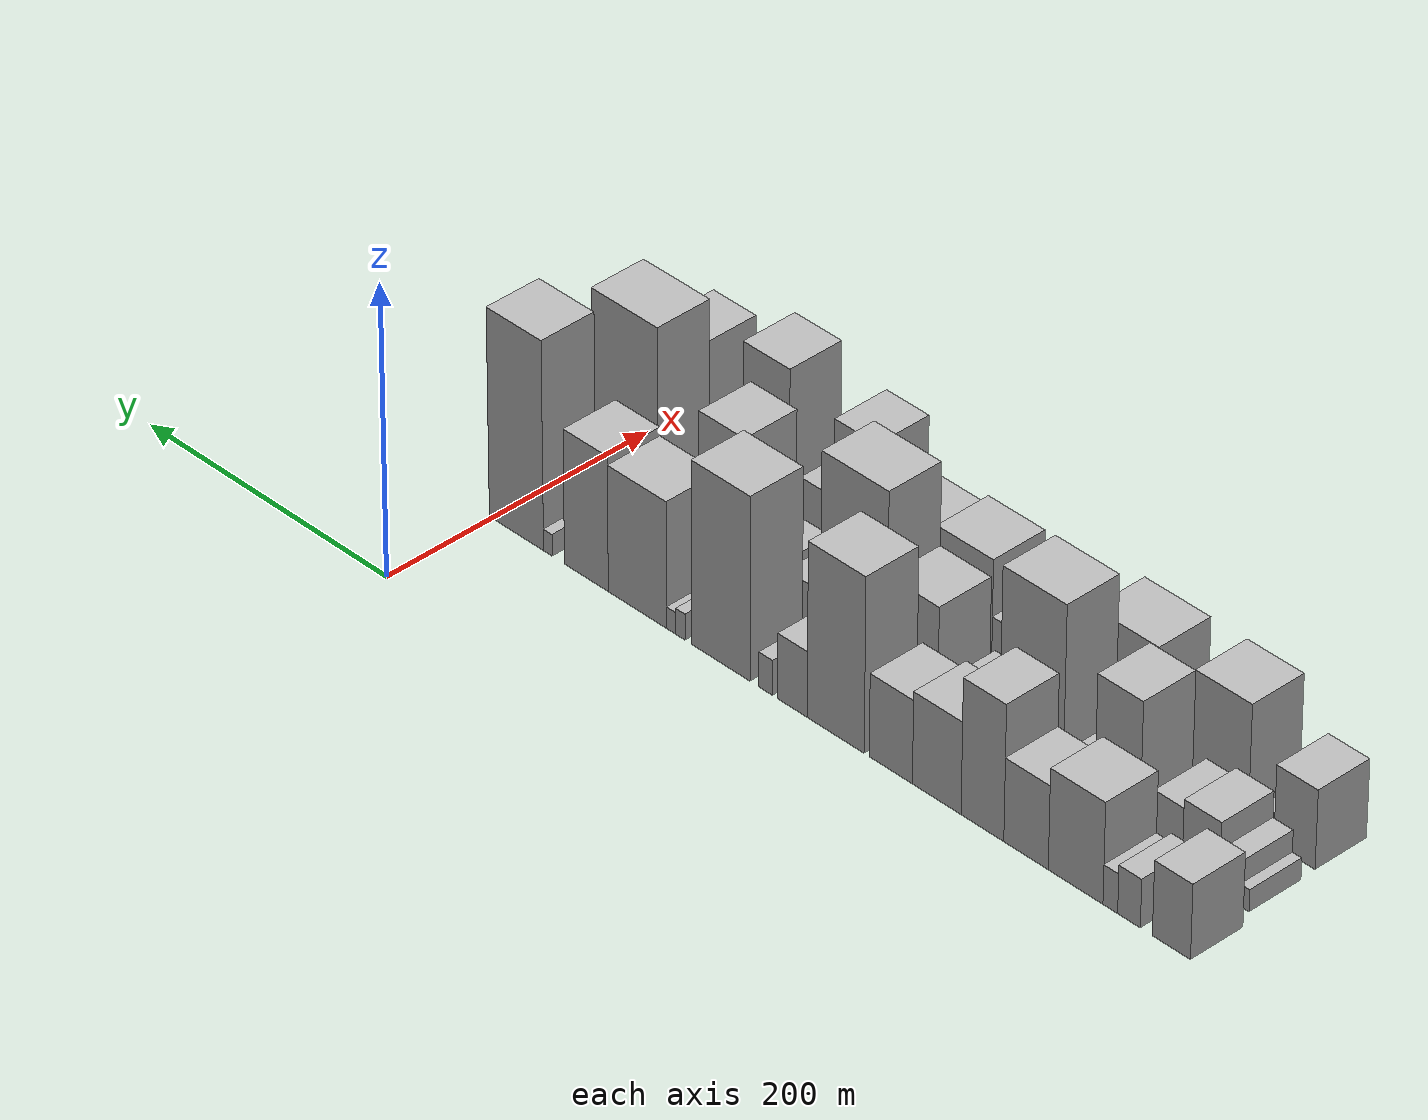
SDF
<sdf version="1.6">
 <world name="default">
  <model name="building_1">
   <static>1</static>
   <pose>100.0000 -533.7878 0 0.000000 0.000000 0.000000</pose>
   <link name="link">
    <pose>0 0 25.50 0 0 0</pose>
    <collision name="collision"><geometry><box><size>40.0000 28.4243 51.0000</size></box></geometry></collision>
    <visual name="visual">
     <cast_shadows>0</cast_shadows>
     <geometry><box><size>40.0000 28.4243 51.0000</size></box></geometry>
     <material>
      <script>
       <uri>model://HANNAS_wall/materials/scripts</uri>
       <uri>model://HANNAS_wall/materials/textures</uri>
       <name>vrc/HANNAS_wall</name>
      </script>
     </material>
    </visual>
   </link>
  </model>
  <model name="building_2">
   <static>1</static>
   <pose>100.0000 -502.0530 0 0.000000 0.000000 0.000000</pose>
   <link name="link">
    <pose>0 0 16.50 0 0 0</pose>
    <collision name="collision"><geometry><box><size>40.0000 17.0454 33.0000</size></box></geometry></collision>
    <visual name="visual">
     <cast_shadows>0</cast_shadows>
     <geometry><box><size>40.0000 17.0454 33.0000</size></box></geometry>
     <material>
      <script>
       <uri>model://HANNAS_wall/materials/scripts</uri>
       <uri>model://HANNAS_wall/materials/textures</uri>
       <name>vrc/HANNAS_wall</name>
      </script>
     </material>
    </visual>
   </link>
  </model>
  <model name="building_3">
   <static>1</static>
   <pose>100.0000 -487.9994 0 0.000000 0.000000 0.000000</pose>
   <link name="link">
    <pose>0 0 13.50 0 0 0</pose>
    <collision name="collision"><geometry><box><size>40.0000 11.0617 27.0000</size></box></geometry></collision>
    <visual name="visual">
     <cast_shadows>0</cast_shadows>
     <geometry><box><size>40.0000 11.0617 27.0000</size></box></geometry>
     <material>
      <script>
       <uri>model://HANNAS_wall/materials/scripts</uri>
       <uri>model://HANNAS_wall/materials/textures</uri>
       <name>vrc/HANNAS_wall</name>
      </script>
     </material>
    </visual>
   </link>
  </model>
  <model name="building_4">
   <static>1</static>
   <pose>100.0000 -461.7784 0 0.000000 0.000000 0.000000</pose>
   <link name="link">
    <pose>0 0 34.50 0 0 0</pose>
    <collision name="collision"><geometry><box><size>40.0000 41.3804 69.0000</size></box></geometry></collision>
    <visual name="visual">
     <cast_shadows>0</cast_shadows>
     <geometry><box><size>40.0000 41.3804 69.0000</size></box></geometry>
     <material>
      <script>
       <uri>model://HANNAS_wall/materials/scripts</uri>
       <uri>model://HANNAS_wall/materials/textures</uri>
       <name>vrc/HANNAS_wall</name>
      </script>
     </material>
    </visual>
   </link>
  </model>
  <model name="building_5">
   <static>1</static>
   <pose>100.0000 -424.1361 0 0.000000 0.000000 0.000000</pose>
   <link name="link">
    <pose>0 0 28.50 0 0 0</pose>
    <collision name="collision"><geometry><box><size>40.0000 33.9042 57.0000</size></box></geometry></collision>
    <visual name="visual">
     <cast_shadows>0</cast_shadows>
     <geometry><box><size>40.0000 33.9042 57.0000</size></box></geometry>
     <material>
      <script>
       <uri>model://HANNAS_wall/materials/scripts</uri>
       <uri>model://HANNAS_wall/materials/textures</uri>
       <name>vrc/HANNAS_wall</name>
      </script>
     </material>
    </visual>
   </link>
  </model>
  <model name="building_6">
   <static>1</static>
   <pose>100.0000 -390.7886 0 0.000000 0.000000 0.000000</pose>
   <link name="link">
    <pose>0 0 46.50 0 0 0</pose>
    <collision name="collision"><geometry><box><size>40.0000 32.7908 93.0000</size></box></geometry></collision>
    <visual name="visual">
     <cast_shadows>0</cast_shadows>
     <geometry><box><size>40.0000 32.7908 93.0000</size></box></geometry>
     <material>
      <script>
       <uri>model://HANNAS_wall/materials/scripts</uri>
       <uri>model://HANNAS_wall/materials/textures</uri>
       <name>vrc/HANNAS_wall</name>
      </script>
     </material>
    </visual>
   </link>
  </model>
  <model name="building_7">
   <static>1</static>
   <pose>100.0000 -355.5904 0 0.000000 0.000000 0.000000</pose>
   <link name="link">
    <pose>0 0 31.50 0 0 0</pose>
    <collision name="collision"><geometry><box><size>40.0000 37.6057 63.0000</size></box></geometry></collision>
    <visual name="visual">
     <cast_shadows>0</cast_shadows>
     <geometry><box><size>40.0000 37.6057 63.0000</size></box></geometry>
     <material>
      <script>
       <uri>model://HANNAS_wall/materials/scripts</uri>
       <uri>model://HANNAS_wall/materials/textures</uri>
       <name>vrc/HANNAS_wall</name>
      </script>
     </material>
    </visual>
   </link>
  </model>
  <model name="building_8">
   <static>1</static>
   <pose>100.0000 -319.9944 0 0.000000 0.000000 0.000000</pose>
   <link name="link">
    <pose>0 0 28.50 0 0 0</pose>
    <collision name="collision"><geometry><box><size>40.0000 33.5863 57.0000</size></box></geometry></collision>
    <visual name="visual">
     <cast_shadows>0</cast_shadows>
     <geometry><box><size>40.0000 33.5863 57.0000</size></box></geometry>
     <material>
      <script>
       <uri>model://HANNAS_wall/materials/scripts</uri>
       <uri>model://HANNAS_wall/materials/textures</uri>
       <name>vrc/HANNAS_wall</name>
      </script>
     </material>
    </visual>
   </link>
  </model>
  <model name="building_9">
   <static>1</static>
   <pose>100.0000 -276.8330 0 0.000000 0.000000 0.000000</pose>
   <link name="link">
    <pose>0 0 60.00 0 0 0</pose>
    <collision name="collision"><geometry><box><size>40.0000 44.7365 120.0000</size></box></geometry></collision>
    <visual name="visual">
     <cast_shadows>0</cast_shadows>
     <geometry><box><size>40.0000 44.7365 120.0000</size></box></geometry>
     <material>
      <script>
       <uri>model://HANNAS_wall/materials/scripts</uri>
       <uri>model://HANNAS_wall/materials/textures</uri>
       <name>vrc/HANNAS_wall</name>
      </script>
     </material>
    </visual>
   </link>
  </model>
  <model name="building_10">
   <static>1</static>
   <pose>100.0000 -242.7322 0 0.000000 0.000000 0.000000</pose>
   <link name="link">
    <pose>0 0 22.50 0 0 0</pose>
    <collision name="collision"><geometry><box><size>40.0000 23.4651 45.0000</size></box></geometry></collision>
    <visual name="visual">
     <cast_shadows>0</cast_shadows>
     <geometry><box><size>40.0000 23.4651 45.0000</size></box></geometry>
     <material>
      <script>
       <uri>model://HANNAS_wall/materials/scripts</uri>
       <uri>model://HANNAS_wall/materials/textures</uri>
       <name>vrc/HANNAS_wall</name>
      </script>
     </material>
    </visual>
   </link>
  </model>
  <model name="building_11">
   <static>1</static>
   <pose>100.0000 -221.5795 0 0.000000 0.000000 0.000000</pose>
   <link name="link">
    <pose>0 0 12.00 0 0 0</pose>
    <collision name="collision"><geometry><box><size>40.0000 10.8404 24.0000</size></box></geometry></collision>
    <visual name="visual">
     <cast_shadows>0</cast_shadows>
     <geometry><box><size>40.0000 10.8404 24.0000</size></box></geometry>
     <material>
      <script>
       <uri>model://HANNAS_wall/materials/scripts</uri>
       <uri>model://HANNAS_wall/materials/textures</uri>
       <name>vrc/HANNAS_wall</name>
      </script>
     </material>
    </visual>
   </link>
  </model>
  <model name="building_12">
   <static>1</static>
   <pose>100.0000 -185.7184 0 0.000000 0.000000 0.000000</pose>
   <link name="link">
    <pose>0 0 63.00 0 0 0</pose>
    <collision name="collision"><geometry><box><size>40.0000 46.8817 126.0000</size></box></geometry></collision>
    <visual name="visual">
     <cast_shadows>0</cast_shadows>
     <geometry><box><size>40.0000 46.8817 126.0000</size></box></geometry>
     <material>
      <script>
       <uri>model://HANNAS_wall/materials/scripts</uri>
       <uri>model://HANNAS_wall/materials/textures</uri>
       <name>vrc/HANNAS_wall</name>
      </script>
     </material>
    </visual>
   </link>
  </model>
  <model name="building_13">
   <static>1</static>
   <pose>100.0000 -153.5307 0 0.000000 0.000000 0.000000</pose>
   <link name="link">
    <pose>0 0 9.00 0 0 0</pose>
    <collision name="collision"><geometry><box><size>40.0000 7.4938 18.0000</size></box></geometry></collision>
    <visual name="visual">
     <cast_shadows>0</cast_shadows>
     <geometry><box><size>40.0000 7.4938 18.0000</size></box></geometry>
     <material>
      <script>
       <uri>model://HANNAS_wall/materials/scripts</uri>
       <uri>model://HANNAS_wall/materials/textures</uri>
       <name>vrc/HANNAS_wall</name>
      </script>
     </material>
    </visual>
   </link>
  </model>
  <model name="building_14">
   <static>1</static>
   <pose>100.0000 -146.0817 0 0.000000 0.000000 0.000000</pose>
   <link name="link">
    <pose>0 0 7.50 0 0 0</pose>
    <collision name="collision"><geometry><box><size>40.0000 7.4043 15.0000</size></box></geometry></collision>
    <visual name="visual">
     <cast_shadows>0</cast_shadows>
     <geometry><box><size>40.0000 7.4043 15.0000</size></box></geometry>
     <material>
      <script>
       <uri>model://HANNAS_wall/materials/scripts</uri>
       <uri>model://HANNAS_wall/materials/textures</uri>
       <name>vrc/HANNAS_wall</name>
      </script>
     </material>
    </visual>
   </link>
  </model>
  <model name="building_15">
   <static>1</static>
   <pose>100.0000 -118.7138 0 0.000000 0.000000 0.000000</pose>
   <link name="link">
    <pose>0 0 43.50 0 0 0</pose>
    <collision name="collision"><geometry><box><size>40.0000 47.3314 87.0000</size></box></geometry></collision>
    <visual name="visual">
     <cast_shadows>0</cast_shadows>
     <geometry><box><size>40.0000 47.3314 87.0000</size></box></geometry>
     <material>
      <script>
       <uri>model://HANNAS_wall/materials/scripts</uri>
       <uri>model://HANNAS_wall/materials/textures</uri>
       <name>vrc/HANNAS_wall</name>
      </script>
     </material>
    </visual>
   </link>
  </model>
  <model name="building_16">
   <static>1</static>
   <pose>100.0000 -77.1451 0 0.000000 0.000000 0.000000</pose>
   <link name="link">
    <pose>0 0 46.50 0 0 0</pose>
    <collision name="collision"><geometry><box><size>40.0000 35.8060 93.0000</size></box></geometry></collision>
    <visual name="visual">
     <cast_shadows>0</cast_shadows>
     <geometry><box><size>40.0000 35.8060 93.0000</size></box></geometry>
     <material>
      <script>
       <uri>model://HANNAS_wall/materials/scripts</uri>
       <uri>model://HANNAS_wall/materials/textures</uri>
       <name>vrc/HANNAS_wall</name>
      </script>
     </material>
    </visual>
   </link>
  </model>
  <model name="building_17">
   <static>1</static>
   <pose>100.0000 -45.6650 0 0.000000 0.000000 0.000000</pose>
   <link name="link">
    <pose>0 0 7.50 0 0 0</pose>
    <collision name="collision"><geometry><box><size>40.0000 7.1542 15.0000</size></box></geometry></collision>
    <visual name="visual">
     <cast_shadows>0</cast_shadows>
     <geometry><box><size>40.0000 7.1542 15.0000</size></box></geometry>
     <material>
      <script>
       <uri>model://HANNAS_wall/materials/scripts</uri>
       <uri>model://HANNAS_wall/materials/textures</uri>
       <name>vrc/HANNAS_wall</name>
      </script>
     </material>
    </visual>
   </link>
  </model>
  <model name="building_18">
   <static>1</static>
   <pose>100.0000 -19.7245 0 0.000000 0.000000 0.000000</pose>
   <link name="link">
    <pose>0 0 72.00 0 0 0</pose>
    <collision name="collision"><geometry><box><size>40.0000 44.7270 144.0000</size></box></geometry></collision>
    <visual name="visual">
     <cast_shadows>0</cast_shadows>
     <geometry><box><size>40.0000 44.7270 144.0000</size></box></geometry>
     <material>
      <script>
       <uri>model://HANNAS_wall/materials/scripts</uri>
       <uri>model://HANNAS_wall/materials/textures</uri>
       <name>vrc/HANNAS_wall</name>
      </script>
     </material>
    </visual>
   </link>
  </model>
  <model name="building_36">
   <static>1</static>
   <pose>152.0000 -537.5006 0 0.000000 0.000000 0.000000</pose>
   <link name="link">
    <pose>0 0 7.50 0 0 0</pose>
    <collision name="collision"><geometry><box><size>40.0000 6.9989 15.0000</size></box></geometry></collision>
    <visual name="visual">
     <cast_shadows>0</cast_shadows>
     <geometry><box><size>40.0000 6.9989 15.0000</size></box></geometry>
     <material>
      <script>
       <uri>model://HANNAS_wall/materials/scripts</uri>
       <uri>model://HANNAS_wall/materials/textures</uri>
       <name>vrc/HANNAS_wall</name>
      </script>
     </material>
    </visual>
   </link>
  </model>
  <model name="building_37">
   <static>1</static>
   <pose>152.0000 -526.4591 0 0.000000 0.000000 0.000000</pose>
   <link name="link">
    <pose>0 0 15.00 0 0 0</pose>
    <collision name="collision"><geometry><box><size>40.0000 15.0840 30.0000</size></box></geometry></collision>
    <visual name="visual">
     <cast_shadows>0</cast_shadows>
     <geometry><box><size>40.0000 15.0840 30.0000</size></box></geometry>
     <material>
      <script>
       <uri>model://HANNAS_wall/materials/scripts</uri>
       <uri>model://HANNAS_wall/materials/textures</uri>
       <name>vrc/HANNAS_wall</name>
      </script>
     </material>
    </visual>
   </link>
  </model>
  <model name="building_38">
   <static>1</static>
   <pose>152.0000 -504.8679 0 0.000000 0.000000 0.000000</pose>
   <link name="link">
    <pose>0 0 24.00 0 0 0</pose>
    <collision name="collision"><geometry><box><size>40.0000 28.0985 48.0000</size></box></geometry></collision>
    <visual name="visual">
     <cast_shadows>0</cast_shadows>
     <geometry><box><size>40.0000 28.0985 48.0000</size></box></geometry>
     <material>
      <script>
       <uri>model://HANNAS_wall/materials/scripts</uri>
       <uri>model://HANNAS_wall/materials/textures</uri>
       <name>vrc/HANNAS_wall</name>
      </script>
     </material>
    </visual>
   </link>
  </model>
  <model name="building_39">
   <static>1</static>
   <pose>152.0000 -479.7542 0 0.000000 0.000000 0.000000</pose>
   <link name="link">
    <pose>0 0 21.00 0 0 0</pose>
    <collision name="collision"><geometry><box><size>40.0000 22.1289 42.0000</size></box></geometry></collision>
    <visual name="visual">
     <cast_shadows>0</cast_shadows>
     <geometry><box><size>40.0000 22.1289 42.0000</size></box></geometry>
     <material>
      <script>
       <uri>model://HANNAS_wall/materials/scripts</uri>
       <uri>model://HANNAS_wall/materials/textures</uri>
       <name>vrc/HANNAS_wall</name>
      </script>
     </material>
    </visual>
   </link>
  </model>
  <model name="building_40">
   <static>1</static>
   <pose>152.0000 -441.5042 0 0.000000 0.000000 0.000000</pose>
   <link name="link">
    <pose>0 0 48.00 0 0 0</pose>
    <collision name="collision"><geometry><box><size>40.0000 34.3711 96.0000</size></box></geometry></collision>
    <visual name="visual">
     <cast_shadows>0</cast_shadows>
     <geometry><box><size>40.0000 34.3711 96.0000</size></box></geometry>
     <material>
      <script>
       <uri>model://HANNAS_wall/materials/scripts</uri>
       <uri>model://HANNAS_wall/materials/textures</uri>
       <name>vrc/HANNAS_wall</name>
      </script>
     </material>
    </visual>
   </link>
  </model>
  <model name="building_41">
   <static>1</static>
   <pose>152.0000 -415.2745 0 0.000000 0.000000 0.000000</pose>
   <link name="link">
    <pose>0 0 18.00 0 0 0</pose>
    <collision name="collision"><geometry><box><size>40.0000 18.0883 36.0000</size></box></geometry></collision>
    <visual name="visual">
     <cast_shadows>0</cast_shadows>
     <geometry><box><size>40.0000 18.0883 36.0000</size></box></geometry>
     <material>
      <script>
       <uri>model://HANNAS_wall/materials/scripts</uri>
       <uri>model://HANNAS_wall/materials/textures</uri>
       <name>vrc/HANNAS_wall</name>
      </script>
     </material>
    </visual>
   </link>
  </model>
  <model name="building_42">
   <static>1</static>
   <pose>152.0000 -375.8528 0 0.000000 0.000000 0.000000</pose>
   <link name="link">
    <pose>0 0 64.50 0 0 0</pose>
    <collision name="collision"><geometry><box><size>40.0000 48.7551 129.0000</size></box></geometry></collision>
    <visual name="visual">
     <cast_shadows>0</cast_shadows>
     <geometry><box><size>40.0000 48.7551 129.0000</size></box></geometry>
     <material>
      <script>
       <uri>model://HANNAS_wall/materials/scripts</uri>
       <uri>model://HANNAS_wall/materials/textures</uri>
       <name>vrc/HANNAS_wall</name>
      </script>
     </material>
    </visual>
   </link>
  </model>
  <model name="building_43">
   <static>1</static>
   <pose>152.0000 -347.8266 0 0.000000 0.000000 0.000000</pose>
   <link name="link">
    <pose>0 0 7.50 0 0 0</pose>
    <collision name="collision"><geometry><box><size>40.0000 7.2974 15.0000</size></box></geometry></collision>
    <visual name="visual">
     <cast_shadows>0</cast_shadows>
     <geometry><box><size>40.0000 7.2974 15.0000</size></box></geometry>
     <material>
      <script>
       <uri>model://HANNAS_wall/materials/scripts</uri>
       <uri>model://HANNAS_wall/materials/textures</uri>
       <name>vrc/HANNAS_wall</name>
      </script>
     </material>
    </visual>
   </link>
  </model>
  <model name="building_44">
   <static>1</static>
   <pose>152.0000 -335.9141 0 0.000000 0.000000 0.000000</pose>
   <link name="link">
    <pose>0 0 15.00 0 0 0</pose>
    <collision name="collision"><geometry><box><size>40.0000 16.5275 30.0000</size></box></geometry></collision>
    <visual name="visual">
     <cast_shadows>0</cast_shadows>
     <geometry><box><size>40.0000 16.5275 30.0000</size></box></geometry>
     <material>
      <script>
       <uri>model://HANNAS_wall/materials/scripts</uri>
       <uri>model://HANNAS_wall/materials/textures</uri>
       <name>vrc/HANNAS_wall</name>
      </script>
     </material>
    </visual>
   </link>
  </model>
  <model name="building_45">
   <static>1</static>
   <pose>152.0000 -313.5962 0 0.000000 0.000000 0.000000</pose>
   <link name="link">
    <pose>0 0 13.50 0 0 0</pose>
    <collision name="collision"><geometry><box><size>40.0000 12.1083 27.0000</size></box></geometry></collision>
    <visual name="visual">
     <cast_shadows>0</cast_shadows>
     <geometry><box><size>40.0000 12.1083 27.0000</size></box></geometry>
     <material>
      <script>
       <uri>model://HANNAS_wall/materials/scripts</uri>
       <uri>model://HANNAS_wall/materials/textures</uri>
       <name>vrc/HANNAS_wall</name>
      </script>
     </material>
    </visual>
   </link>
  </model>
  <model name="building_46">
   <static>1</static>
   <pose>152.0000 -283.6470 0 0.000000 0.000000 0.000000</pose>
   <link name="link">
    <pose>0 0 37.50 0 0 0</pose>
    <collision name="collision"><geometry><box><size>40.0000 39.7901 75.0000</size></box></geometry></collision>
    <visual name="visual">
     <cast_shadows>0</cast_shadows>
     <geometry><box><size>40.0000 39.7901 75.0000</size></box></geometry>
     <material>
      <script>
       <uri>model://HANNAS_wall/materials/scripts</uri>
       <uri>model://HANNAS_wall/materials/textures</uri>
       <name>vrc/HANNAS_wall</name>
      </script>
     </material>
    </visual>
   </link>
  </model>
  <model name="building_47">
   <static>1</static>
   <pose>152.0000 -237.5327 0 0.000000 0.000000 0.000000</pose>
   <link name="link">
    <pose>0 0 66.00 0 0 0</pose>
    <collision name="collision"><geometry><box><size>40.0000 52.4384 132.0000</size></box></geometry></collision>
    <visual name="visual">
     <cast_shadows>0</cast_shadows>
     <geometry><box><size>40.0000 52.4384 132.0000</size></box></geometry>
     <material>
      <script>
       <uri>model://HANNAS_wall/materials/scripts</uri>
       <uri>model://HANNAS_wall/materials/textures</uri>
       <name>vrc/HANNAS_wall</name>
      </script>
     </material>
    </visual>
   </link>
  </model>
  <model name="building_48">
   <static>1</static>
   <pose>152.0000 -194.0101 0 0.000000 0.000000 0.000000</pose>
   <link name="link">
    <pose>0 0 18.00 0 0 0</pose>
    <collision name="collision"><geometry><box><size>40.0000 20.6068 36.0000</size></box></geometry></collision>
    <visual name="visual">
     <cast_shadows>0</cast_shadows>
     <geometry><box><size>40.0000 20.6068 36.0000</size></box></geometry>
     <material>
      <script>
       <uri>model://HANNAS_wall/materials/scripts</uri>
       <uri>model://HANNAS_wall/materials/textures</uri>
       <name>vrc/HANNAS_wall</name>
      </script>
     </material>
    </visual>
   </link>
  </model>
  <model name="building_49">
   <static>1</static>
   <pose>152.0000 -167.5240 0 0.000000 0.000000 0.000000</pose>
   <link name="link">
    <pose>0 0 18.00 0 0 0</pose>
    <collision name="collision"><geometry><box><size>40.0000 20.3655 36.0000</size></box></geometry></collision>
    <visual name="visual">
     <cast_shadows>0</cast_shadows>
     <geometry><box><size>40.0000 20.3655 36.0000</size></box></geometry>
     <material>
      <script>
       <uri>model://HANNAS_wall/materials/scripts</uri>
       <uri>model://HANNAS_wall/materials/textures</uri>
       <name>vrc/HANNAS_wall</name>
      </script>
     </material>
    </visual>
   </link>
  </model>
  <model name="building_50">
   <static>1</static>
   <pose>152.0000 -132.0287 0 0.000000 0.000000 0.000000</pose>
   <link name="link">
    <pose>0 0 54.00 0 0 0</pose>
    <collision name="collision"><geometry><box><size>40.0000 36.6251 108.0000</size></box></geometry></collision>
    <visual name="visual">
     <cast_shadows>0</cast_shadows>
     <geometry><box><size>40.0000 36.6251 108.0000</size></box></geometry>
     <material>
      <script>
       <uri>model://HANNAS_wall/materials/scripts</uri>
       <uri>model://HANNAS_wall/materials/textures</uri>
       <name>vrc/HANNAS_wall</name>
      </script>
     </material>
    </visual>
   </link>
  </model>
  <model name="building_51">
   <static>1</static>
   <pose>152.0000 -103.0841 0 0.000000 0.000000 0.000000</pose>
   <link name="link">
    <pose>0 0 21.00 0 0 0</pose>
    <collision name="collision"><geometry><box><size>40.0000 21.2643 42.0000</size></box></geometry></collision>
    <visual name="visual">
     <cast_shadows>0</cast_shadows>
     <geometry><box><size>40.0000 21.2643 42.0000</size></box></geometry>
     <material>
      <script>
       <uri>model://HANNAS_wall/materials/scripts</uri>
       <uri>model://HANNAS_wall/materials/textures</uri>
       <name>vrc/HANNAS_wall</name>
      </script>
     </material>
    </visual>
   </link>
  </model>
  <model name="building_52">
   <static>1</static>
   <pose>152.0000 -86.5071 0 0.000000 0.000000 0.000000</pose>
   <link name="link">
    <pose>0 0 12.00 0 0 0</pose>
    <collision name="collision"><geometry><box><size>40.0000 11.8896 24.0000</size></box></geometry></collision>
    <visual name="visual">
     <cast_shadows>0</cast_shadows>
     <geometry><box><size>40.0000 11.8896 24.0000</size></box></geometry>
     <material>
      <script>
       <uri>model://HANNAS_wall/materials/scripts</uri>
       <uri>model://HANNAS_wall/materials/textures</uri>
       <name>vrc/HANNAS_wall</name>
      </script>
     </material>
    </visual>
   </link>
  </model>
  <model name="building_53">
   <static>1</static>
   <pose>152.0000 -53.7715 0 0.000000 0.000000 0.000000</pose>
   <link name="link">
    <pose>0 0 73.50 0 0 0</pose>
    <collision name="collision"><geometry><box><size>40.0000 53.5818 147.0000</size></box></geometry></collision>
    <visual name="visual">
     <cast_shadows>0</cast_shadows>
     <geometry><box><size>40.0000 53.5818 147.0000</size></box></geometry>
     <material>
      <script>
       <uri>model://HANNAS_wall/materials/scripts</uri>
       <uri>model://HANNAS_wall/materials/textures</uri>
       <name>vrc/HANNAS_wall</name>
      </script>
     </material>
    </visual>
   </link>
  </model>
  <model name="building_70">
   <static>1</static>
   <pose>204.0000 -524.5877 0 0.000000 0.000000 0.000000</pose>
   <link name="link">
    <pose>0 0 27.00 0 0 0</pose>
    <collision name="collision"><geometry><box><size>40.0000 30.8247 54.0000</size></box></geometry></collision>
    <visual name="visual">
     <cast_shadows>0</cast_shadows>
     <geometry><box><size>40.0000 30.8247 54.0000</size></box></geometry>
     <material>
      <script>
       <uri>model://HANNAS_wall/materials/scripts</uri>
       <uri>model://HANNAS_wall/materials/textures</uri>
       <name>vrc/HANNAS_wall</name>
      </script>
     </material>
    </visual>
   </link>
  </model>
  <model name="building_71">
   <static>1</static>
   <pose>204.0000 -504.4820 0 0.000000 0.000000 0.000000</pose>
   <link name="link">
    <pose>0 0 10.50 0 0 0</pose>
    <collision name="collision"><geometry><box><size>40.0000 9.3867 21.0000</size></box></geometry></collision>
    <visual name="visual">
     <cast_shadows>0</cast_shadows>
     <geometry><box><size>40.0000 9.3867 21.0000</size></box></geometry>
     <material>
      <script>
       <uri>model://HANNAS_wall/materials/scripts</uri>
       <uri>model://HANNAS_wall/materials/textures</uri>
       <name>vrc/HANNAS_wall</name>
      </script>
     </material>
    </visual>
   </link>
  </model>
  <model name="building_72">
   <static>1</static>
   <pose>204.0000 -468.4687 0 0.000000 0.000000 0.000000</pose>
   <link name="link">
    <pose>0 0 42.00 0 0 0</pose>
    <collision name="collision"><geometry><box><size>40.0000 42.6400 84.0000</size></box></geometry></collision>
    <visual name="visual">
     <cast_shadows>0</cast_shadows>
     <geometry><box><size>40.0000 42.6400 84.0000</size></box></geometry>
     <material>
      <script>
       <uri>model://HANNAS_wall/materials/scripts</uri>
       <uri>model://HANNAS_wall/materials/textures</uri>
       <name>vrc/HANNAS_wall</name>
      </script>
     </material>
    </visual>
   </link>
  </model>
  <model name="building_73">
   <static>1</static>
   <pose>204.0000 -433.4450 0 0.000000 0.000000 0.000000</pose>
   <link name="link">
    <pose>0 0 10.50 0 0 0</pose>
    <collision name="collision"><geometry><box><size>40.0000 9.4074 21.0000</size></box></geometry></collision>
    <visual name="visual">
     <cast_shadows>0</cast_shadows>
     <geometry><box><size>40.0000 9.4074 21.0000</size></box></geometry>
     <material>
      <script>
       <uri>model://HANNAS_wall/materials/scripts</uri>
       <uri>model://HANNAS_wall/materials/textures</uri>
       <name>vrc/HANNAS_wall</name>
      </script>
     </material>
    </visual>
   </link>
  </model>
  <model name="building_74">
   <static>1</static>
   <pose>204.0000 -394.6522 0 0.000000 0.000000 0.000000</pose>
   <link name="link">
    <pose>0 0 42.00 0 0 0</pose>
    <collision name="collision"><geometry><box><size>40.0000 50.1781 84.0000</size></box></geometry></collision>
    <visual name="visual">
     <cast_shadows>0</cast_shadows>
     <geometry><box><size>40.0000 50.1781 84.0000</size></box></geometry>
     <material>
      <script>
       <uri>model://HANNAS_wall/materials/scripts</uri>
       <uri>model://HANNAS_wall/materials/textures</uri>
       <name>vrc/HANNAS_wall</name>
      </script>
     </material>
    </visual>
   </link>
  </model>
  <model name="building_75">
   <static>1</static>
   <pose>204.0000 -354.3937 0 0.000000 0.000000 0.000000</pose>
   <link name="link">
    <pose>0 0 30.00 0 0 0</pose>
    <collision name="collision"><geometry><box><size>40.0000 30.3391 60.0000</size></box></geometry></collision>
    <visual name="visual">
     <cast_shadows>0</cast_shadows>
     <geometry><box><size>40.0000 30.3391 60.0000</size></box></geometry>
     <material>
      <script>
       <uri>model://HANNAS_wall/materials/scripts</uri>
       <uri>model://HANNAS_wall/materials/textures</uri>
       <name>vrc/HANNAS_wall</name>
      </script>
     </material>
    </visual>
   </link>
  </model>
  <model name="building_76">
   <static>1</static>
   <pose>204.0000 -330.5365 0 0.000000 0.000000 0.000000</pose>
   <link name="link">
    <pose>0 0 15.00 0 0 0</pose>
    <collision name="collision"><geometry><box><size>40.0000 17.3753 30.0000</size></box></geometry></collision>
    <visual name="visual">
     <cast_shadows>0</cast_shadows>
     <geometry><box><size>40.0000 17.3753 30.0000</size></box></geometry>
     <material>
      <script>
       <uri>model://HANNAS_wall/materials/scripts</uri>
       <uri>model://HANNAS_wall/materials/textures</uri>
       <name>vrc/HANNAS_wall</name>
      </script>
     </material>
    </visual>
   </link>
  </model>
  <model name="building_77">
   <static>1</static>
   <pose>204.0000 -318.1378 0 0.000000 0.000000 0.000000</pose>
   <link name="link">
    <pose>0 0 7.50 0 0 0</pose>
    <collision name="collision"><geometry><box><size>40.0000 7.4220 15.0000</size></box></geometry></collision>
    <visual name="visual">
     <cast_shadows>0</cast_shadows>
     <geometry><box><size>40.0000 7.4220 15.0000</size></box></geometry>
     <material>
      <script>
       <uri>model://HANNAS_wall/materials/scripts</uri>
       <uri>model://HANNAS_wall/materials/textures</uri>
       <name>vrc/HANNAS_wall</name>
      </script>
     </material>
    </visual>
   </link>
  </model>
  <model name="building_78">
   <static>1</static>
   <pose>204.0000 -303.7344 0 0.000000 0.000000 0.000000</pose>
   <link name="link">
    <pose>0 0 18.00 0 0 0</pose>
    <collision name="collision"><geometry><box><size>40.0000 21.3850 36.0000</size></box></geometry></collision>
    <visual name="visual">
     <cast_shadows>0</cast_shadows>
     <geometry><box><size>40.0000 21.3850 36.0000</size></box></geometry>
     <material>
      <script>
       <uri>model://HANNAS_wall/materials/scripts</uri>
       <uri>model://HANNAS_wall/materials/textures</uri>
       <name>vrc/HANNAS_wall</name>
      </script>
     </material>
    </visual>
   </link>
  </model>
  <model name="building_79">
   <static>1</static>
   <pose>204.0000 -270.9431 0 0.000000 0.000000 0.000000</pose>
   <link name="link">
    <pose>0 0 37.50 0 0 0</pose>
    <collision name="collision"><geometry><box><size>40.0000 44.1975 75.0000</size></box></geometry></collision>
    <visual name="visual">
     <cast_shadows>0</cast_shadows>
     <geometry><box><size>40.0000 44.1975 75.0000</size></box></geometry>
     <material>
      <script>
       <uri>model://HANNAS_wall/materials/scripts</uri>
       <uri>model://HANNAS_wall/materials/textures</uri>
       <name>vrc/HANNAS_wall</name>
      </script>
     </material>
    </visual>
   </link>
  </model>
  <model name="building_80">
   <static>1</static>
   <pose>204.0000 -229.2390 0 0.000000 0.000000 0.000000</pose>
   <link name="link">
    <pose>0 0 34.50 0 0 0</pose>
    <collision name="collision"><geometry><box><size>40.0000 39.2107 69.0000</size></box></geometry></collision>
    <visual name="visual">
     <cast_shadows>0</cast_shadows>
     <geometry><box><size>40.0000 39.2107 69.0000</size></box></geometry>
     <material>
      <script>
       <uri>model://HANNAS_wall/materials/scripts</uri>
       <uri>model://HANNAS_wall/materials/textures</uri>
       <name>vrc/HANNAS_wall</name>
      </script>
     </material>
    </visual>
   </link>
  </model>
  <model name="building_81">
   <static>1</static>
   <pose>204.0000 -184.8324 0 0.000000 0.000000 0.000000</pose>
   <link name="link">
    <pose>0 0 52.50 0 0 0</pose>
    <collision name="collision"><geometry><box><size>40.0000 33.6026 105.0000</size></box></geometry></collision>
    <visual name="visual">
     <cast_shadows>0</cast_shadows>
     <geometry><box><size>40.0000 33.6026 105.0000</size></box></geometry>
     <material>
      <script>
       <uri>model://HANNAS_wall/materials/scripts</uri>
       <uri>model://HANNAS_wall/materials/textures</uri>
       <name>vrc/HANNAS_wall</name>
      </script>
     </material>
    </visual>
   </link>
  </model>
  <model name="building_82">
   <static>1</static>
   <pose>204.0000 -154.6687 0 0.000000 0.000000 0.000000</pose>
   <link name="link">
    <pose>0 0 25.50 0 0 0</pose>
    <collision name="collision"><geometry><box><size>40.0000 26.7247 51.0000</size></box></geometry></collision>
    <visual name="visual">
     <cast_shadows>0</cast_shadows>
     <geometry><box><size>40.0000 26.7247 51.0000</size></box></geometry>
     <material>
      <script>
       <uri>model://HANNAS_wall/materials/scripts</uri>
       <uri>model://HANNAS_wall/materials/textures</uri>
       <name>vrc/HANNAS_wall</name>
      </script>
     </material>
    </visual>
   </link>
  </model>
  <model name="building_83">
   <static>1</static>
   <pose>204.0000 -113.5662 0 0.000000 0.000000 0.000000</pose>
   <link name="link">
    <pose>0 0 60.00 0 0 0</pose>
    <collision name="collision"><geometry><box><size>40.0000 37.4803 120.0000</size></box></geometry></collision>
    <visual name="visual">
     <cast_shadows>0</cast_shadows>
     <geometry><box><size>40.0000 37.4803 120.0000</size></box></geometry>
     <material>
      <script>
       <uri>model://HANNAS_wall/materials/scripts</uri>
       <uri>model://HANNAS_wall/materials/textures</uri>
       <name>vrc/HANNAS_wall</name>
      </script>
     </material>
    </visual>
   </link>
  </model>
  <model name="building_84">
   <static>1</static>
   <pose>204.0000 -91.0859 0 0.000000 0.000000 0.000000</pose>
   <link name="link">
    <pose>0 0 7.50 0 0 0</pose>
    <collision name="collision"><geometry><box><size>40.0000 7.4804 15.0000</size></box></geometry></collision>
    <visual name="visual">
     <cast_shadows>0</cast_shadows>
     <geometry><box><size>40.0000 7.4804 15.0000</size></box></geometry>
     <material>
      <script>
       <uri>model://HANNAS_wall/materials/scripts</uri>
       <uri>model://HANNAS_wall/materials/textures</uri>
       <name>vrc/HANNAS_wall</name>
      </script>
     </material>
    </visual>
   </link>
  </model>
  <model name="building_85">
   <static>1</static>
   <pose>204.0000 -78.9008 0 0.000000 0.000000 0.000000</pose>
   <link name="link">
    <pose>0 0 16.50 0 0 0</pose>
    <collision name="collision"><geometry><box><size>40.0000 16.8898 33.0000</size></box></geometry></collision>
    <visual name="visual">
     <cast_shadows>0</cast_shadows>
     <geometry><box><size>40.0000 16.8898 33.0000</size></box></geometry>
     <material>
      <script>
       <uri>model://HANNAS_wall/materials/scripts</uri>
       <uri>model://HANNAS_wall/materials/textures</uri>
       <name>vrc/HANNAS_wall</name>
      </script>
     </material>
    </visual>
   </link>
  </model>
  <model name="building_86">
   <static>1</static>
   <pose>204.0000 -46.2371 0 0.000000 0.000000 0.000000</pose>
   <link name="link">
    <pose>0 0 51.00 0 0 0</pose>
    <collision name="collision"><geometry><box><size>40.0000 34.4375 102.0000</size></box></geometry></collision>
    <visual name="visual">
     <cast_shadows>0</cast_shadows>
     <geometry><box><size>40.0000 34.4375 102.0000</size></box></geometry>
     <material>
      <script>
       <uri>model://HANNAS_wall/materials/scripts</uri>
       <uri>model://HANNAS_wall/materials/textures</uri>
       <name>vrc/HANNAS_wall</name>
      </script>
     </material>
    </visual>
   </link>
  </model>
  <model name="building_87">
   <static>1</static>
   <pose>204.0000 -24.1246 0 0.000000 0.000000 0.000000</pose>
   <link name="link">
    <pose>0 0 12.00 0 0 0</pose>
    <collision name="collision"><geometry><box><size>40.0000 9.7874 24.0000</size></box></geometry></collision>
    <visual name="visual">
     <cast_shadows>0</cast_shadows>
     <geometry><box><size>40.0000 9.7874 24.0000</size></box></geometry>
     <material>
      <script>
       <uri>model://HANNAS_wall/materials/scripts</uri>
       <uri>model://HANNAS_wall/materials/textures</uri>
       <name>vrc/HANNAS_wall</name>
      </script>
     </material>
    </visual>
   </link>
  </model>
 </world>
</sdf>
